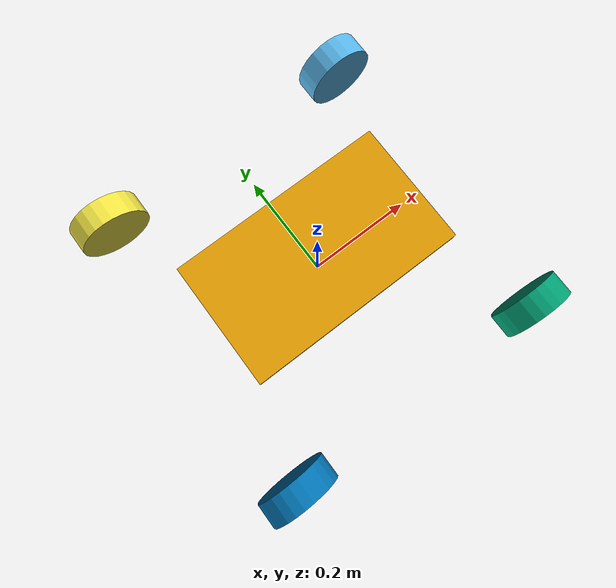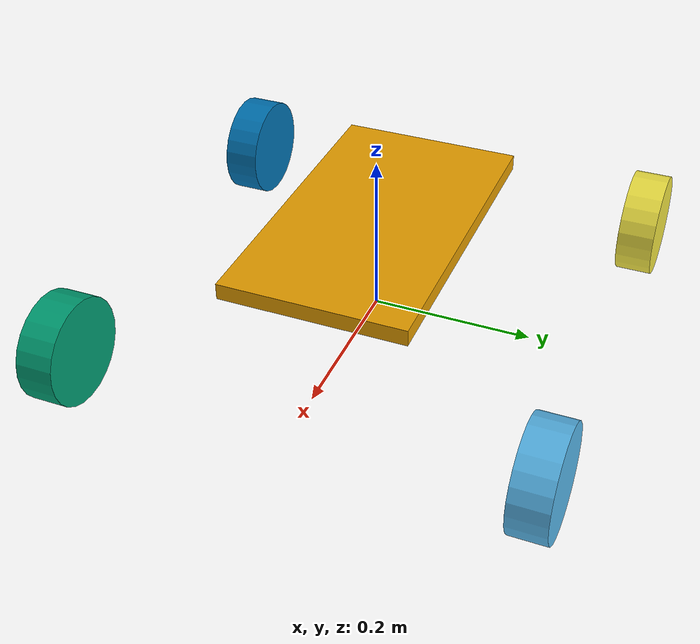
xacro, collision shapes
<?xml version="1.0"?>
<robot xmlns:xacro="http://www.ros.org/wiki/xacro" name="converted_robot">
  <xacro:arg name="prefix" default=""/>

  <link name="$(arg prefix)base_link">
    <visual>
      <origin xyz="0 0 0" rpy="0 0 -3.14"/>
      <geometry>
        <mesh filename="package://my_robot_package/meshes/chassis.dae"/>
        <scale value=".4 .4 .4"/>
      </geometry>
    </visual>
    <collision name="base_link_collision">
      <origin xyz= "0 0 0.12" rpy="0 0 0"/>
        <geometry>
          <box size=".3949 0.22836 0.02"/>
        </geometry>
    </collision>
  </link>

  <link name="$(arg prefix)front_left_wheel_link">
    <visual>
      <geometry>
        <mesh filename="package://my_robot_package/meshes/wheel.dae"/>
      </geometry>
    </visual>
    <collision name="front_left_wheel_collision">
      <origin xyz="0 0 0" rpy="-1.57 0 0"/>
      <geometry>
        <cylinder length="0.0457" radius="0.06604"/>
      </geometry>
    </collision>
  </link>

  <link name="$(arg prefix)front_right_wheel_link">
    <visual>
      <geometry>
        <mesh filename="package://my_robot_package/meshes/wheel.dae"/>
      </geometry>
    </visual>
    <collision name="front_right_wheel_collision">
      <origin xyz="0 0 0" rpy="-1.57 0 0"/>
      <geometry>
        <cylinder length="0.0457" radius="0.06604"/>
      </geometry>
    </collision>
  </link>

  <link name="$(arg prefix)rear_left_wheel_link">
    <visual>
      <geometry>
        <mesh filename="package://my_robot_package/meshes/wheel.dae"/>
      </geometry>
    </visual>
    <collision name="rear_left_wheel_collision">
      <origin xyz="0 0 0" rpy="-1.57 0 0"/>
      <geometry>
        <cylinder length="0.0457" radius="0.06604"/>
      </geometry>
    </collision>
  </link>

  <link name="$(arg prefix)rear_right_wheel_link">
    <visual>
      <geometry>
        <mesh filename="package://my_robot_package/meshes/wheel.dae"/>
      </geometry>
    </visual>
    <collision name="rear_right_wheel_collision">
      <origin xyz="0 0 0" rpy="-1.57 0 0"/>
      <geometry>
        <cylinder length="0.0457" radius="0.06604"/>
      </geometry>
    </collision>
  </link>

  <joint name="$(arg prefix)front_left_wheel_joint" type="continuous">
    <parent link="$(arg prefix)base_link"/>
    <child link="$(arg prefix)front_left_wheel_link"/>
    <origin xyz="0.256 0.2854 0.03282" rpy="0 0 0"/>
    <axis xyz="0 1 0"/>
  </joint>

  <joint name="$(arg prefix)front_right_wheel_joint" type="continuous">
    <parent link="$(arg prefix)base_link"/>
    <child link="$(arg prefix)front_right_wheel_link"/>
    <origin xyz="0.256 -0.2854 0.03282" rpy="0 0 0"/>
    <axis xyz="0 1 0"/>
  </joint>

  <joint name="$(arg prefix)rear_left_wheel_joint" type="continuous">
    <parent link="$(arg prefix)base_link"/>
    <child link="$(arg prefix)rear_left_wheel_link"/>
    <origin xyz="-0.256 0.2854 0.03282" rpy="0 0 0"/>
    <axis xyz="0 1 0"/>
  </joint>

  <joint name="$(arg prefix)rear_right_wheel_joint" type="continuous">
    <parent link="$(arg prefix)base_link"/>
    <child link="$(arg prefix)rear_right_wheel_link"/>
    <origin xyz="-0.256 -0.2854 0.03282" rpy="0 0 0"/>
    <axis xyz="0 1 0"/>
  </joint>
</robot>
